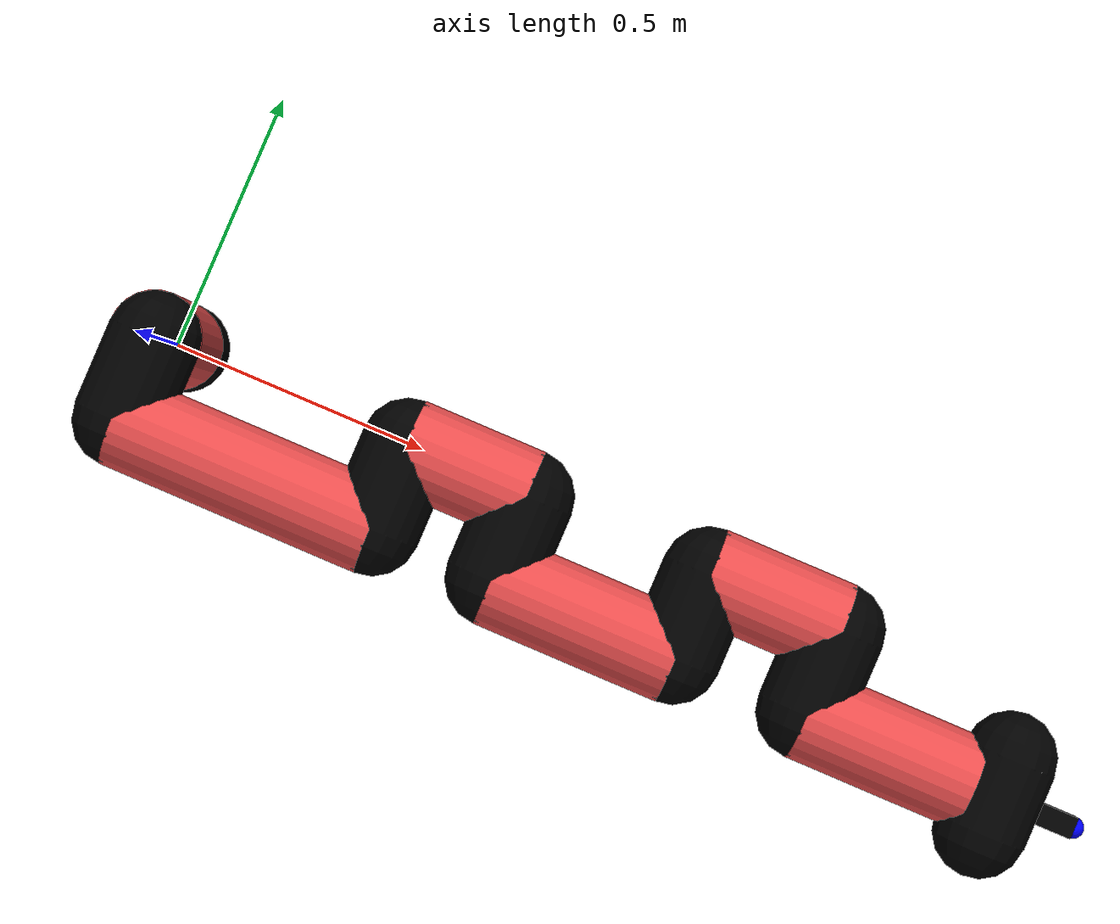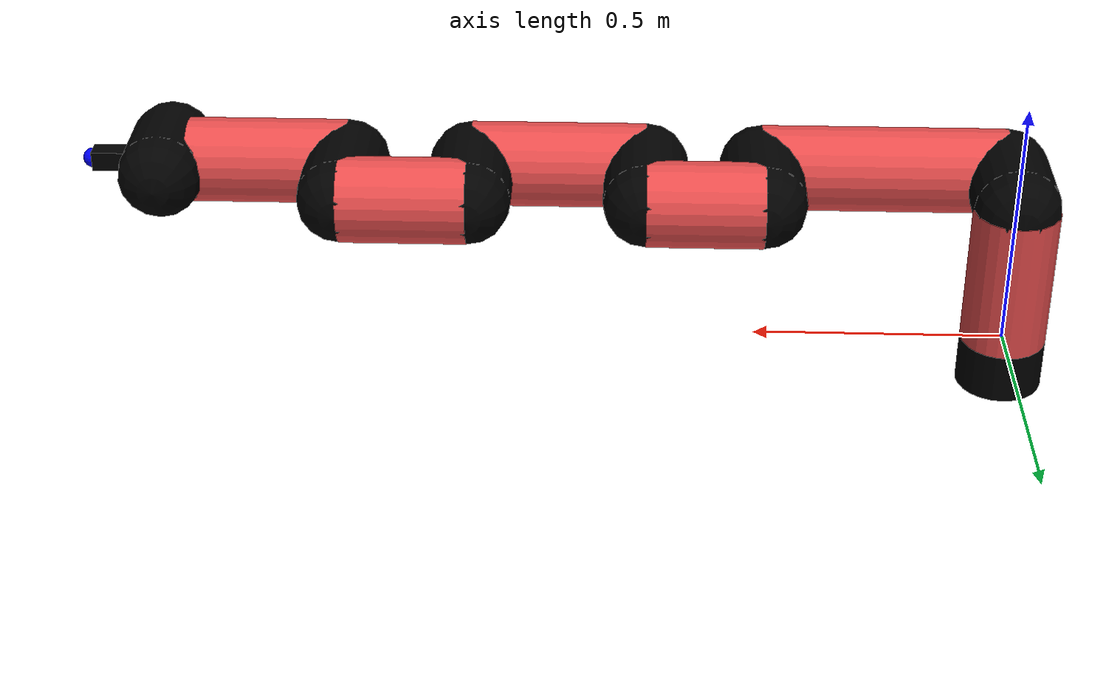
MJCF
<mujoco model="manipulator">
		<compiler angle="degree" coordinate="local" inertiafromgeom="auto" meshdir="meshes/"/>
		<option gravity="0 0 0" integrator="RK4" iterations="30" timestep="0.01"/>

		<default>
		<joint armature="1" limited="true" stiffness="10" damping="15" frictionloss="5.0"/>
		<geom conaffinity="1" condim="3" contype="1" friction=".5 .1 .1" margin="0.002"/>
		<motor ctrllimited="true"/>
		<position ctrllimited="true"/>
		</default>

		<asset>
		<texture builtin="gradient" height="100" rgb1="1.0 1.0 1.0" rgb2="1.0 1.0 1.0" type="skybox" width="100"/>
		<texture builtin="flat" height="32" name="arm_tex" rgb1="0.9 0.3 0.3" type="2d" width="32"/>
		<texture builtin="flat" height="32" name="gripper_tex" rgb1="0.0 0.0 0.0" type="cube" width="32"/>

		<material name="arm_mat" shininess="0.1" specular="0.1" texture="arm_tex"/>
		<material name="gripper_mat" shininess="1" specular="1" texture="gripper_tex"/>
		</asset>

		<worldbody>
		<light cutoff="45" diffuse=".8 .8 .8" dir="0 0.16 -1" directional="false" name="light" pos="0 -2.0 8.0" specular="0.3 0.3 0.3"/>

		<body name="base_link" pos="0 0 -0.1">
		<geom fromto="0 0 0 0 0 0.1" material="arm_mat" name="base_link" rgba="0.0 0.0 0.0 1" size="0.085" type="cylinder"/>
		</body>

		<body name="l1" pos="0 0 0">
<geom fromto="0 0 0 0 0 0.29" material="arm_mat" name="l1" rgba="0.9 0.3 0.3 1" size="0.085" type="cylinder"/>
<geom fromto="0 0 0.29 0 -0.16 0.29" material="arm_mat" name="l1_ex" rgba="0.0 0.0 0.0 1" size="0.085" type="capsule"/>
<joint axis="0 0 1" name="j1" pos="0 0 0" range="-90 90" damping="27.96" frictionloss="11.35"/>

<body name="l2" pos="0 -0.16 0.29">
<geom fromto="0 0 0 0.49 0 0" material="arm_mat" name="l2" rgba="0.9 0.3 0.3 1" size="0.085" type="cylinder"/>
<geom fromto="0.49 0 0 0.49 0.16 0" material="arm_mat" name="l2_ex" rgba="0.0 0.0 0.0 1" size="0.085" type="capsule"/>
<joint axis="0.0 1.0 0.0" name="j2" pos="0 0 0" range="-90 60" damping="25.12" frictionloss="10.89"/>

<body name="l3" pos="0.49 0.16 0">
<geom fromto="0 0 0 0.23 0 0" material="arm_mat" name="l3" rgba="0.9 0.3 0.3 1" size="0.085" type="cylinder"/>
<geom fromto="0.23 0 0 0.23 -0.16 0" material="arm_mat" name="l3_ex" rgba="0.0 0.0 0.0 1" size="0.085" type="capsule"/>
<joint axis="0.0 1.0 0.0" name="j3" pos="0 0 0" range="-30 60" damping="27.13" frictionloss="10.76"/>

<body name="l4" pos="0.23 -0.16 0">
<geom fromto="0 0 0 0.35 0 0" material="arm_mat" name="l4" rgba="0.9 0.3 0.3 1" size="0.085" type="cylinder"/>
<geom fromto="0.35 0 0 0.35 0.16 0" material="arm_mat" name="l4_ex" rgba="0.0 0.0 0.0 1" size="0.085" type="capsule"/>
<joint axis="0.0 1.0 0.0" name="j4" pos="0 0 0" range="-30 60" damping="24.52" frictionloss="8.72"/>

<body name="l5" pos="0.35 0.16 0">
<geom fromto="0 0 0 0.25 0 0" material="arm_mat" name="l5" rgba="0.9 0.3 0.3 1" size="0.085" type="cylinder"/>
<geom fromto="0.25 0 0 0.25 -0.16 0" material="arm_mat" name="l5_ex" rgba="0.0 0.0 0.0 1" size="0.085" type="capsule"/>
<joint axis="0.0 1.0 0.0" name="j5" pos="0 0 0" range="-30 60" damping="36.08" frictionloss="10.03"/>

<body name="l6" pos="0.25 -0.16 0">
<geom fromto="0 0 0 0.32 0 0" material="arm_mat" name="l6" rgba="0.9 0.3 0.3 1" size="0.085" type="cylinder"/>
<joint axis="0.0 1.0 0.0" name="j6" pos="0 0 0" range="-30 60" damping="33.71" frictionloss="10.22"/>

<body name="gripper" pos="0.32 0 0">
<geom fromto="0.05 -0.07 0 0.05 0.07 0" material="gripper_mat" name="gripper" rgba="0.0 0.0 0.0 1" size="0.085" type="capsule"/><joint axis="1 0 0" name="j7" pos="0 0 0" range="-90 90" damping="15" frictionloss="5.0"/><body name="finger" pos="0.1 0 0">
<geom fromto="0 0.0 0 0.1 0.0 0" material="gripper_mat" name="finger" rgba="0.0 0.0 0.0 1" size="0.020 0.06 0.06" type="box"/>
</body>
<site name="current" pos="0.2 0. 0.0" rgba="0. 0. 1.0 1" size="0.02" type="sphere"/>
</body>
</body>
</body>
</body>
</body>
</body>
</body>
</worldbody>
<actuator>
<motor ctrllimited="true" ctrlrange="-1.0 1.0" joint="j1" gear="81.01"/>
<motor ctrllimited="true" ctrlrange="-1.0 1.0" joint="j2" gear="93.16"/>
<motor ctrllimited="true" ctrlrange="-1.0 1.0" joint="j3" gear="66.0"/>
<motor ctrllimited="true" ctrlrange="-1.0 1.0" joint="j4" gear="78.3"/>
<motor ctrllimited="true" ctrlrange="-1.0 1.0" joint="j5" gear="75.58"/>
<motor ctrllimited="true" ctrlrange="-1.0 1.0" joint="j6" gear="85.85"/>
<motor ctrllimited="true" ctrlrange="-1.0 1.0" joint="j7" gear="80"/>
</actuator>
</mujoco>
